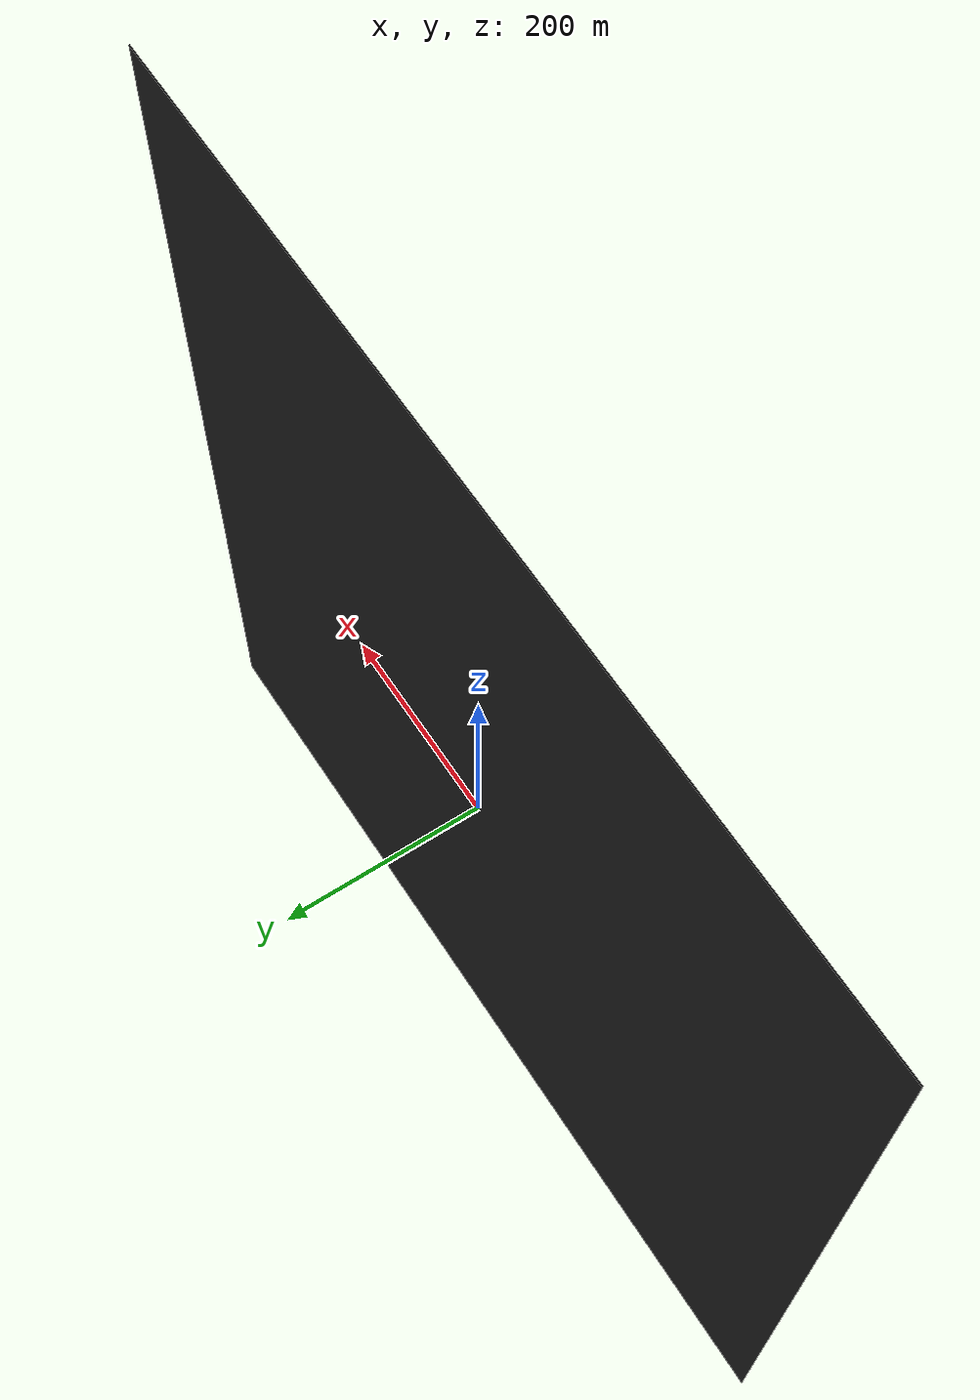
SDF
<?xml version="1.0" ?>
<sdf version="1.5">
  <world name="default">

		<!-- Camera pose -->
    <gui>
			<camera name="gzclient_camera">
				<pose>3.402 -47.01 16.001 0 0 1.57</pose>
			</camera>
    </gui>

    <!-- A global light source -->
    <include>
      <uri>model://sun</uri>
	    <pose>0 0 0 0 0 0</pose>
    </include>

    <!-- A transparent ground plane -->
    <include>
      <uri>model://breakout_base</uri>
      <pose>0 0 1 0 0 0</pose>
    </include>

    <physics type="ode">
        <friction>
            <ode>
                <mu>0.0</mu>
            </ode>
        </friction>

        <gravity>0 0 0</gravity>
        <air_resistance>0</air_resistance>

        <max_step_size>0.001</max_step_size>
    </physics>

		<!-- A bouncy ball -->
		<include>
			<uri>model://bouncy_ball</uri>
			<pose>0 0 17 0 0 0</pose>
		</include>

		<!-- A boundary -->
		<include>
			<uri>model://boundary</uri>
			<pose>0 0 30 0 0 0</pose>
		</include>

		<!-- A paddle -->
		<include>
			<uri>model://paddle</uri>
			<pose>0 0 3 0 0 0</pose>
		</include>

		<!-- Breakout Background -->
		<include>
			<uri>model://breakout_bg</uri>
			<pose>0 0 0 1.5707 0 0</pose>
		</include>

		<!-- Yellow Row 1 -->
		<include>
			<name>yellow_brick_1</name>
			<uri>model://yellow_brick</uri>
			<pose>-10.0715 0 20 0 0 0</pose>
		</include>

		<include>
			<name>yellow_brick_2</name>
			<uri>model://yellow_brick</uri>
			<pose>-8.522 0 20 0 0 0</pose>
		</include>

		<include>
			<name>yellow_brick_3</name>
			<uri>model://yellow_brick</uri>
			<pose>-6.9725 0 20 0 0 0</pose>
		</include>

		<include>
			<name>yellow_brick_4</name>
			<uri>model://yellow_brick</uri>
			<pose>-5.423 0 20 0 0 0</pose>
		</include>

		<include>
			<name>yellow_brick_5</name>
			<uri>model://yellow_brick</uri>
			<pose>-3.8735 0 20 0 0 0</pose>
		</include>

		<include>
			<name>yellow_brick_6</name>
			<uri>model://yellow_brick</uri>
			<pose>-2.324 0 20 0 0 0</pose>
		</include>

		<include>
			<name>yellow_brick_7</name>
			<uri>model://yellow_brick</uri>
			<pose>-0.7745 0 20 0 0 0</pose>
		</include>

		<include>
			<name>yellow_brick_8</name>
			<uri>model://yellow_brick</uri>
			<pose>0.7745 0 20 0 0 0</pose>
		</include>

		<include>
			<name>yellow_brick_9</name>
			<uri>model://yellow_brick</uri>
			<pose>2.324 0 20 0 0 0</pose>
		</include>

		<include>
			<name>yellow_brick_10</name>
			<uri>model://yellow_brick</uri>
			<pose>3.8735 0 20 0 0 0</pose>
		</include>

		<include>
			<name>yellow_brick_11</name>
			<uri>model://yellow_brick</uri>
			<pose>5.423 0 20 0 0 0</pose>
		</include>

		<include>
			<name>yellow_brick_12</name>
			<uri>model://yellow_brick</uri>
			<pose>6.9725 0 20 0 0 0</pose>
		</include>

		<include>
			<name>yellow_brick_13</name>
			<uri>model://yellow_brick</uri>
			<pose>8.522 0 20 0 0 0</pose>
		</include>

		<include>
			<name>yellow_brick_14</name>
			<uri>model://yellow_brick</uri>
			<pose>10.0715 0 20 0 0 0</pose>
		</include>

		<!-- Yellow Row 2 -->
		<include>
			<name>yellow_brick_15</name>
			<uri>model://yellow_brick</uri>
			<pose>-10.0715 0 20.55 0 0 0</pose>
		</include>

		<include>
			<name>yellow_brick_16</name>
			<uri>model://yellow_brick</uri>
			<pose>-8.522 0 20.55 0 0 0</pose>
		</include>

		<include>
			<name>yellow_brick_17</name>
			<uri>model://yellow_brick</uri>
			<pose>-6.9725 0 20.55 0 0 0</pose>
		</include>

		<include>
			<name>yellow_brick_18</name>
			<uri>model://yellow_brick</uri>
			<pose>-5.423 0 20.55 0 0 0</pose>
		</include>

		<include>
			<name>yellow_brick_19</name>
			<uri>model://yellow_brick</uri>
			<pose>-3.8735 0 20.55 0 0 0</pose>
		</include>

		<include>
			<name>yellow_brick_20</name>
			<uri>model://yellow_brick</uri>
			<pose>-2.324 0 20.55 0 0 0</pose>
		</include>

		<include>
			<name>yellow_brick_21</name>
			<uri>model://yellow_brick</uri>
			<pose>-0.7745 0 20.55 0 0 0</pose>
		</include>

		<include>
			<name>yellow_brick_22</name>
			<uri>model://yellow_brick</uri>
			<pose>0.7745 0 20.55 0 0 0</pose>
		</include>

		<include>
			<name>yellow_brick_23</name>
			<uri>model://yellow_brick</uri>
			<pose>2.324 0 20.55 0 0 0</pose>
		</include>

		<include>
			<name>yellow_brick_24</name>
			<uri>model://yellow_brick</uri>
			<pose>3.8735 0 20.55 0 0 0</pose>
		</include>

		<include>
			<name>yellow_brick_25</name>
			<uri>model://yellow_brick</uri>
			<pose>5.423 0 20.55 0 0 0</pose>
		</include>

		<include>
			<name>yellow_brick_26</name>
			<uri>model://yellow_brick</uri>
			<pose>6.9725 0 20.55 0 0 0</pose>
		</include>

		<include>
			<name>yellow_brick_27</name>
			<uri>model://yellow_brick</uri>
			<pose>8.522 0 20.55 0 0 0</pose>
		</include>

		<include>
			<name>yellow_brick_28</name>
			<uri>model://yellow_brick</uri>
			<pose>10.0715 0 20.55 0 0 0</pose>
		</include>

		<!-- Green Row 1 -->
		<include>
			<name>green_brick_1</name>
			<uri>model://green_brick</uri>
			<pose>-10.0715 0 21.1 0 0 0</pose>
		</include>

		<include>
			<name>green_brick_2</name>
			<uri>model://green_brick</uri>
			<pose>-8.522 0 21.1 0 0 0</pose>
		</include>

		<include>
			<name>green_brick_3</name>
			<uri>model://green_brick</uri>
			<pose>-6.9725 0 21.1 0 0 0</pose>
		</include>

		<include>
			<name>green_brick_4</name>
			<uri>model://green_brick</uri>
			<pose>-5.423 0 21.1 0 0 0</pose>
		</include>

		<include>
			<name>green_brick_5</name>
			<uri>model://green_brick</uri>
			<pose>-3.8735 0 21.1 0 0 0</pose>
		</include>

		<include>
			<name>green_brick_6</name>
			<uri>model://green_brick</uri>
			<pose>-2.324 0 21.1 0 0 0</pose>
		</include>

		<include>
			<name>green_brick_7</name>
			<uri>model://green_brick</uri>
			<pose>-0.7745 0 21.1 0 0 0</pose>
		</include>

		<include>
			<name>green_brick_8</name>
			<uri>model://green_brick</uri>
			<pose>0.7745 0 21.1 0 0 0</pose>
		</include>

		<include>
			<name>green_brick_9</name>
			<uri>model://green_brick</uri>
			<pose>2.324 0 21.1 0 0 0</pose>
		</include>

		<include>
			<name>green_brick_10</name>
			<uri>model://green_brick</uri>
			<pose>3.8735 0 21.1 0 0 0</pose>
		</include>

		<include>
			<name>green_brick_11</name>
			<uri>model://green_brick</uri>
			<pose>5.423 0 21.1 0 0 0</pose>
		</include>

		<include>
			<name>green_brick_12</name>
			<uri>model://green_brick</uri>
			<pose>6.9725 0 21.1 0 0 0</pose>
		</include>

		<include>
			<name>green_brick_13</name>
			<uri>model://green_brick</uri>
			<pose>8.522 0 21.1 0 0 0</pose>
		</include>

		<include>
			<name>green_brick_14</name>
			<uri>model://green_brick</uri>
			<pose>10.0715 0 21.1 0 0 0</pose>
		</include>

		<!-- Green Row 2 -->
		<include>
			<name>green_brick_15</name>
			<uri>model://green_brick</uri>
			<pose>-10.0715 0 21.65 0 0 0</pose>
		</include>

		<include>
			<name>green_brick_16</name>
			<uri>model://green_brick</uri>
			<pose>-8.522 0 21.65 0 0 0</pose>
		</include>

		<include>
			<name>green_brick_17</name>
			<uri>model://green_brick</uri>
			<pose>-6.9725 0 21.65 0 0 0</pose>
		</include>

		<include>
			<name>green_brick_18</name>
			<uri>model://green_brick</uri>
			<pose>-5.423 0 21.65 0 0 0</pose>
		</include>

		<include>
			<name>green_brick_19</name>
			<uri>model://green_brick</uri>
			<pose>-3.8735 0 21.65 0 0 0</pose>
		</include>

		<include>
			<name>green_brick_20</name>
			<uri>model://green_brick</uri>
			<pose>-2.324 0 21.65 0 0 0</pose>
		</include>

		<include>
			<name>green_brick_21</name>
			<uri>model://green_brick</uri>
			<pose>-0.7745 0 21.65 0 0 0</pose>
		</include>

		<include>
			<name>green_brick_22</name>
			<uri>model://green_brick</uri>
			<pose>0.7745 0 21.65 0 0 0</pose>
		</include>

		<include>
			<name>green_brick_23</name>
			<uri>model://green_brick</uri>
			<pose>2.324 0 21.65 0 0 0</pose>
		</include>

		<include>
			<name>green_brick_24</name>
			<uri>model://green_brick</uri>
			<pose>3.8735 0 21.65 0 0 0</pose>
		</include>

		<include>
			<name>green_brick_25</name>
			<uri>model://green_brick</uri>
			<pose>5.423 0 21.65 0 0 0</pose>
		</include>

		<include>
			<name>green_brick_26</name>
			<uri>model://green_brick</uri>
			<pose>6.9725 0 21.65 0 0 0</pose>
		</include>

		<include>
			<name>green_brick_27</name>
			<uri>model://green_brick</uri>
			<pose>8.522 0 21.65 0 0 0</pose>
		</include>

		<include>
			<name>green_brick_28</name>
			<uri>model://green_brick</uri>
			<pose>10.0715 0 21.65 0 0 0</pose>
		</include>

		<!-- Orange Row 1 -->
		<include>
			<name>orange_brick_1</name>
			<uri>model://orange_brick</uri>
			<pose>-10.0715 0 22.2 0 0 0</pose>
		</include>

		<include>
			<name>orange_brick_2</name>
			<uri>model://orange_brick</uri>
			<pose>-8.522 0 22.2 0 0 0</pose>
		</include>

		<include>
			<name>orange_brick_3</name>
			<uri>model://orange_brick</uri>
			<pose>-6.9725 0 22.2 0 0 0</pose>
		</include>

		<include>
			<name>orange_brick_4</name>
			<uri>model://orange_brick</uri>
			<pose>-5.423 0 22.2 0 0 0</pose>
		</include>

		<include>
			<name>orange_brick_5</name>
			<uri>model://orange_brick</uri>
			<pose>-3.8735 0 22.2 0 0 0</pose>
		</include>

		<include>
			<name>orange_brick_6</name>
			<uri>model://orange_brick</uri>
			<pose>-2.324 0 22.2 0 0 0</pose>
		</include>

		<include>
			<name>orange_brick_7</name>
			<uri>model://orange_brick</uri>
			<pose>-0.7745 0 22.2 0 0 0</pose>
		</include>

		<include>
			<name>orange_brick_8</name>
			<uri>model://orange_brick</uri>
			<pose>0.7745 0 22.2 0 0 0</pose>
		</include>

		<include>
			<name>orange_brick_9</name>
			<uri>model://orange_brick</uri>
			<pose>2.324 0 22.2 0 0 0</pose>
		</include>

		<include>
			<name>orange_brick_10</name>
			<uri>model://orange_brick</uri>
			<pose>3.8735 0 22.2 0 0 0</pose>
		</include>

		<include>
			<name>orange_brick_11</name>
			<uri>model://orange_brick</uri>
			<pose>5.423 0 22.2 0 0 0</pose>
		</include>

		<include>
			<name>orange_brick_12</name>
			<uri>model://orange_brick</uri>
			<pose>6.9725 0 22.2 0 0 0</pose>
		</include>

		<include>
			<name>orange_brick_13</name>
			<uri>model://orange_brick</uri>
			<pose>8.522 0 22.2 0 0 0</pose>
		</include>

		<include>
			<name>orange_brick_14</name>
			<uri>model://orange_brick</uri>
			<pose>10.0715 0 22.2 0 0 0</pose>
		</include>

		<!-- Orange Row 2 -->
		<include>
			<name>orange_brick_15</name>
			<uri>model://orange_brick</uri>
			<pose>-10.0715 0 22.75 0 0 0</pose>
		</include>

		<include>
			<name>orange_brick_16</name>
			<uri>model://orange_brick</uri>
			<pose>-8.522 0 22.75 0 0 0</pose>
		</include>

		<include>
			<name>orange_brick_17</name>
			<uri>model://orange_brick</uri>
			<pose>-6.9725 0 22.75 0 0 0</pose>
		</include>

		<include>
			<name>orange_brick_18</name>
			<uri>model://orange_brick</uri>
			<pose>-5.423 0 22.75 0 0 0</pose>
		</include>

		<include>
			<name>orange_brick_19</name>
			<uri>model://orange_brick</uri>
			<pose>-3.8735 0 22.75 0 0 0</pose>
		</include>

		<include>
			<name>orange_brick_20</name>
			<uri>model://orange_brick</uri>
			<pose>-2.324 0 22.75 0 0 0</pose>
		</include>

		<include>
			<name>orange_brick_21</name>
			<uri>model://orange_brick</uri>
			<pose>-0.7745 0 22.75 0 0 0</pose>
		</include>

		<include>
			<name>orange_brick_22</name>
			<uri>model://orange_brick</uri>
			<pose>0.7745 0 22.75 0 0 0</pose>
		</include>

		<include>
			<name>orange_brick_23</name>
			<uri>model://orange_brick</uri>
			<pose>2.324 0 22.75 0 0 0</pose>
		</include>

		<include>
			<name>orange_brick_24</name>
			<uri>model://orange_brick</uri>
			<pose>3.8735 0 22.75 0 0 0</pose>
		</include>

		<include>
			<name>orange_brick_25</name>
			<uri>model://orange_brick</uri>
			<pose>5.423 0 22.75 0 0 0</pose>
		</include>

		<include>
			<name>orange_brick_26</name>
			<uri>model://orange_brick</uri>
			<pose>6.9725 0 22.75 0 0 0</pose>
		</include>

		<include>
			<name>orange_brick_27</name>
			<uri>model://orange_brick</uri>
			<pose>8.522 0 22.75 0 0 0</pose>
		</include>

		<include>
			<name>orange_brick_28</name>
			<uri>model://orange_brick</uri>
			<pose>10.0715 0 22.75 0 0 0</pose>
		</include>

		<!-- Red Row 1 -->
		<include>
			<name>red_brick_1</name>
			<uri>model://red_brick</uri>
			<pose>-10.0715 0 23.3 0 0 0</pose>
		</include>

		<include>
			<name>red_brick_2</name>
			<uri>model://red_brick</uri>
			<pose>-8.522 0 23.3 0 0 0</pose>
		</include>

		<include>
			<name>red_brick_3</name>
			<uri>model://red_brick</uri>
			<pose>-6.9725 0 23.3 0 0 0</pose>
		</include>

		<include>
			<name>red_brick_4</name>
			<uri>model://red_brick</uri>
			<pose>-5.423 0 23.3 0 0 0</pose>
		</include>

		<include>
			<name>red_brick_5</name>
			<uri>model://red_brick</uri>
			<pose>-3.8735 0 23.3 0 0 0</pose>
		</include>

		<include>
			<name>red_brick_6</name>
			<uri>model://red_brick</uri>
			<pose>-2.324 0 23.3 0 0 0</pose>
		</include>

		<include>
			<name>red_brick_7</name>
			<uri>model://red_brick</uri>
			<pose>-0.7745 0 23.3 0 0 0</pose>
		</include>

		<include>
			<name>red_brick_8</name>
			<uri>model://red_brick</uri>
			<pose>0.7745 0 23.3 0 0 0</pose>
		</include>

		<include>
			<name>red_brick_9</name>
			<uri>model://red_brick</uri>
			<pose>2.324 0 23.3 0 0 0</pose>
		</include>

		<include>
			<name>red_brick_10</name>
			<uri>model://red_brick</uri>
			<pose>3.8735 0 23.3 0 0 0</pose>
		</include>

		<include>
			<name>red_brick_11</name>
			<uri>model://red_brick</uri>
			<pose>5.423 0 23.3 0 0 0</pose>
		</include>

		<include>
			<name>red_brick_12</name>
			<uri>model://red_brick</uri>
			<pose>6.9725 0 23.3 0 0 0</pose>
		</include>

		<include>
			<name>red_brick_13</name>
			<uri>model://red_brick</uri>
			<pose>8.522 0 23.3 0 0 0</pose>
		</include>

		<include>
			<name>red_brick_14</name>
			<uri>model://red_brick</uri>
			<pose>10.0715 0 23.3 0 0 0</pose>
		</include>

		<!-- Red Row 2 -->
		<include>
			<name>red_brick_15</name>
			<uri>model://red_brick</uri>
			<pose>-10.0715 0 23.85 0 0 0</pose>
		</include>

		<include>
			<name>red_brick_16</name>
			<uri>model://red_brick</uri>
			<pose>-8.522 0 23.85 0 0 0</pose>
		</include>

		<include>
			<name>red_brick_17</name>
			<uri>model://red_brick</uri>
			<pose>-6.9725 0 23.85 0 0 0</pose>
		</include>

		<include>
			<name>red_brick_18</name>
			<uri>model://red_brick</uri>
			<pose>-5.423 0 23.85 0 0 0</pose>
		</include>

		<include>
			<name>red_brick_19</name>
			<uri>model://red_brick</uri>
			<pose>-3.8735 0 23.85 0 0 0</pose>
		</include>

		<include>
			<name>red_brick_20</name>
			<uri>model://red_brick</uri>
			<pose>-2.324 0 23.85 0 0 0</pose>
		</include>

		<include>
			<name>red_brick_21</name>
			<uri>model://red_brick</uri>
			<pose>-0.7745 0 23.85 0 0 0</pose>
		</include>

		<include>
			<name>red_brick_22</name>
			<uri>model://red_brick</uri>
			<pose>0.7745 0 23.85 0 0 0</pose>
		</include>

		<include>
			<name>red_brick_23</name>
			<uri>model://red_brick</uri>
			<pose>2.324 0 23.85 0 0 0</pose>
		</include>

		<include>
			<name>red_brick_24</name>
			<uri>model://red_brick</uri>
			<pose>3.8735 0 23.85 0 0 0</pose>
		</include>

		<include>
			<name>red_brick_25</name>
			<uri>model://red_brick</uri>
			<pose>5.423 0 23.85 0 0 0</pose>
		</include>

		<include>
			<name>red_brick_26</name>
			<uri>model://red_brick</uri>
			<pose>6.9725 0 23.85 0 0 0</pose>
		</include>

		<include>
			<name>red_brick_27</name>
			<uri>model://red_brick</uri>
			<pose>8.522 0 23.85 0 0 0</pose>
		</include>

		<include>
			<name>red_brick_28</name>
			<uri>model://red_brick</uri>
			<pose>10.0715 0 23.85 0 0 0</pose>
		</include>

		<!-- Live Score Counter -->
		<include>
			<name>zero0</name>
			<uri>model://zero</uri>
			<pose>-8.522 0 26.4 0 0 0</pose>
		</include>

		<include>
			<name>zero1</name>
			<uri>model://zero</uri>
			<pose>-6.9725 0 26.4 0 0 0</pose>
		</include>

		<include>
			<name>zero2</name>
			<uri>model://zero</uri>
			<pose>-5.423 0 26.4 0 0 0</pose>
		</include>

		<!-- High Score Counter -->
		<include>
			<name>zero3</name>
			<uri>model://zero</uri>
			<pose>3.8735 0 26.4 0 0 0</pose>
		</include>

		<include>
			<name>zero4</name>
			<uri>model://zero</uri>
			<pose>5.423 0 26.4 0 0 0</pose>
		</include>

		<include>
			<name>zero5</name>
			<uri>model://zero</uri>
			<pose>6.9725 0 26.4 0 0 0</pose>
		</include>

		<!-- Top left decoration -->
		<include>
			<name>one6</name>
			<uri>model://one</uri>
			<pose>-10.0715 0 29.5 0 0 0</pose>
		</include>

		<!-- Lives Counter -->
		<include>
			<name>one7</name>
			<uri>model://one</uri>
			<pose>2.324 0 29.5 0 0 0</pose>
		</include>

		<!-- keep barebones scene -->
    <scene>
      <shadows>0</shadows>
			<grid>false</grid>
			<origin_visual>false</origin_visual>
    </scene>

		<plugin name="breakoutGazeboPlugin" filename="libbreakoutGazeboPlugin.so"/>

  </world>
</sdf>

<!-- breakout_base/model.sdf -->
<sdf version="1.5">
  <model name="breakout_base">
    <static>true</static>
    <link name="link">
      <collision name="collision">
        <geometry>
          <plane>
            <normal>0 0 1</normal>
            <size>100 100</size>
          </plane>
        </geometry>
        <surface>
          <friction>
            <ode>
              <mu>100</mu>
              <mu2>50</mu2>
            </ode>
          </friction>
        </surface>
      </collision>
    </link>
  </model>
</sdf>

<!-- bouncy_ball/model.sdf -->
<sdf version="1.5">
    <model name="bouncy_ball">
      <link name="ball_link">

        <collision name="collision">
          <geometry>
            <sphere>
              <radius>0.1</radius>
            </sphere>
          </geometry>

          <surface>

            <bounce>
              <restitution_coefficient>1.0</restitution_coefficient>
              <threshold>0</threshold>
            </bounce>

						<friction>
							<ode>
								<mu>0.0</mu>
								<mu2>0.0</mu2>
							</ode>
						</friction>

            <contact>
              <ode>
                <max_vel>50</max_vel>
              </ode>
            </contact>

          </surface>

        </collision>

        <visual name="visual">
          <geometry>
            <sphere>
              <radius>0.1</radius>
            </sphere>
          </geometry>
					<material>
						<ambient>1.0 0.4 1.0 1</ambient>
						<diffuse>1.0 0.4 1.0 1</diffuse>
						<specular>0.1 0.1 0.1 1</specular>
					</material>
        </visual>

				<sensor name="collision_sensor" type="contact">
					<update_rate>10.0</update_rate>
					<always_on>true</always_on>
					<contact>
						<collision>collision</collision>
						<topic>bumper_contact</topic>
					</contact>
					<plugin name="collision_plugin" filename="libgazebo_ros_bumper.so">
						<update_rate>10.0</update_rate>
						<always_on>true</always_on>
						<bumperTopicName>/robot_bumper</bumperTopicName>
						<frameName>ball_link</frameName>
					</plugin>
				</sensor>
      </link>

    </model>
</sdf>

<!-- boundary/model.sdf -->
<sdf version="1.5">
    <model name="boundary">
			<static>true</static>
      <link name="bottom_link">

        <collision name="collision">
          <geometry>
            <box>
							<size>22.5 0.5 0.5</size>
						</box>
          </geometry>

          <surface>

            <bounce>
              <restitution_coefficient>1.0</restitution_coefficient>
              <threshold>0</threshold>
            </bounce>

						<friction>
							<ode>
								<mu>0.0</mu>
								<mu2>0.0</mu2>
							</ode>
						</friction>

            <contact>
              <ode>
                <max_vel>999</max_vel>
              </ode>
            </contact>

          </surface>

        </collision>

        <visual name="visual">
          <geometry>
            <box>
							<size>22.5 0.5 0.5</size>
						</box>
          </geometry>

					<material>
						<ambient>1.0 1.0 1.0 1</ambient>
						<diffuse>1.0 1.0 1.0 1</diffuse>
						<specular>1.0 1.0 1.0 1</specular>
					</material>
        </visual>

      </link>

			<link name="left_link">
				<pose>-11 0 -20 0 1.5707 0</pose>

				<collision name="collision">
					<geometry>
						<box>
							<size>40.0 0.5 0.5</size>
						</box>
					</geometry>

					<surface>

						<bounce>
							<restitution_coefficient>1.0</restitution_coefficient>
							<threshold>0</threshold>
						</bounce>

						<friction>
							<ode>
								<mu>0.0</mu>
								<mu2>0.0</mu2>
							</ode>
						</friction>

						<contact>
							<ode>
								<max_vel>999</max_vel>
							</ode>
						</contact>

					</surface>

				</collision>

				<visual name="visual">
					<geometry>
						<box>
							<size>40.0 0.5 0.5</size>
						</box>
					</geometry>

					<material>
						<ambient>1.0 1.0 1.0 1</ambient>
						<diffuse>1.0 1.0 1.0 1</diffuse>
						<specular>1.0 1.0 1.0 1</specular>
					</material>

				</visual>
			</link>

			<link name="right_link">
				<pose>11 0 -20 0 1.5707 0</pose>

				<collision name="collision">
					<geometry>
						<box>
							<size>40.0 0.5 0.5</size>
						</box>
					</geometry>

					<surface>

						<bounce>
							<restitution_coefficient>1.0</restitution_coefficient>
							<threshold>0</threshold>
						</bounce>

						<friction>
							<ode>
								<mu>0.0</mu>
								<mu2>0.0</mu2>
							</ode>
						</friction>

						<contact>
							<ode>
								<max_vel>999</max_vel>
							</ode>
						</contact>

					</surface>

				</collision>

				<visual name="visual">
					<geometry>
						<box>
							<size>40.0 0.5 0.5</size>
						</box>
					</geometry>

					<material>
						<ambient>1.0 1.0 1.0 1</ambient>
						<diffuse>1.0 1.0 1.0 1</diffuse>
						<specular>1.0 1.0 1.0 1</specular>
					</material>

				</visual>
			</link>

    </model>
</sdf>

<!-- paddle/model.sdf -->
<sdf version="1.7">
    <model name="paddle">
			<static>false</static>
      <link name="base_link">

				<inertial>
					<pose>0 0 0 0 0 0</pose>
					<mass>1000000</mass>
					<inertia>
						<ixx>1000000</ixx>
						<ixy>0</ixy>
						<ixz>0</ixz>
						<iyy>1000000</iyy>
						<iyz>0</iyz>
						<izz>1000000</izz>
					</inertia>
				</inertial>

				<collision name="collision">
					<geometry>
						<box>
							<size>1.5 0.2 0.2</size>
						</box>
					</geometry>

					<surface>

						<bounce>
							<restitution_coefficient>1.0</restitution_coefficient>
							<threshold>0</threshold>
						</bounce>

						<friction>
							<ode>
								<mu>0.0</mu>
								<mu2>0.0</mu2>
							</ode>
						</friction>

						<contact>
							<ode>
								<max_vel>999</max_vel>
							</ode>
						</contact>

					</surface>

				</collision>

				<visual name="visual">
					<geometry>
						<box>
							<size>1.5 0.2 0.2</size>
						</box>
					</geometry>
					<material>
						<script>
							<uri>file://media/materials/scripts/gazebo.material</uri>
							<name>Gazebo/Turquoise</name>
						</script>
					</material>
				</visual>

      </link>

			<plugin name="object_controller" filename="libgazebo_ros_planar_move.so">
				<robotNamespace>paddle</robotNamespace>
				<commandTopic>cmd_vel</commandTopic>
				<odometryTopic>odom</odometryTopic>
				<odometryFrame>odom</odometryFrame>
				<odometryRate>50.0</odometryRate>
				<robotBaseFrame>base_link</robotBaseFrame>
				<cmdTimeout>-1.0</cmdTimeout>
			</plugin>

    </model>
</sdf>

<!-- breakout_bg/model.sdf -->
<sdf version="1.5">
  <model name="breakout_bg">
    <static>true</static>
    <link name="link">
      <collision name="collision">
        <geometry>
          <plane>
            <normal>0 0 1</normal>
            <size>1000 1000</size>
          </plane>
        </geometry>
        <surface>
          <friction>
            <ode>
              <mu>100</mu>
              <mu2>50</mu2>
            </ode>
          </friction>
        </surface>
      </collision>
      <visual name="visual">
        <cast_shadows>false</cast_shadows>
        <geometry>
          <plane>
            <normal>0 0 1</normal>
            <size>1000 1000</size>
          </plane>
        </geometry>
        <material>
          <script>
            <uri>file://media/materials/scripts/gazebo.material</uri>
            <name>Gazebo/Black</name>
          </script>
        </material>
      </visual>
    </link>
  </model>
</sdf>

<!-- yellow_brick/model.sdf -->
<sdf version="1.7">
    <model name="yellow_brick">
			<static>true</static>
      <link name="base_link">

				<collision name="collision">
					<geometry>
						<box>
							<size>1.357 0.2 0.2</size>
						</box>
					</geometry>

					<surface>

						<bounce>
							<restitution_coefficient>1.0</restitution_coefficient>
							<threshold>0</threshold>
						</bounce>

						<friction>
							<ode>
								<mu>0.0</mu>
								<mu2>0.0</mu2>
							</ode>
						</friction>

						<contact>
							<ode>
								<max_vel>999</max_vel>
							</ode>
						</contact>

					</surface>

				</collision>

				<visual name="visual">
					<geometry>
						<box>
							<size>1.357 0.5 0.4</size>
						</box>
					</geometry>
					<material>
						<script>
							<uri>file://media/materials/scripts/gazebo.material</uri>
							<name>Gazebo/Yellow</name>
						</script>
					</material>
				</visual>
      </link>

    </model>
</sdf>

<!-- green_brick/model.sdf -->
<sdf version="1.7">
    <model name="green_brick">
			<static>true</static>
      <link name="base_link">

				<collision name="collision">
					<geometry>
						<box>
							<size>1.357 0.2 0.2</size>
						</box>
					</geometry>

					<surface>

						<bounce>
							<restitution_coefficient>1.0</restitution_coefficient>
							<threshold>0</threshold>
						</bounce>

						<friction>
							<ode>
								<mu>0.0</mu>
								<mu2>0.0</mu2>
							</ode>
						</friction>

						<contact>
							<ode>
								<max_vel>999</max_vel>
							</ode>
						</contact>

					</surface>

				</collision>

				<visual name="visual">
					<geometry>
						<box>
							<size>1.357 0.5 0.4</size>
						</box>
					</geometry>
					<material>
						<script>
							<uri>file://media/materials/scripts/gazebo.material</uri>
							<name>Gazebo/Green</name>
						</script>
					</material>
				</visual>
      </link>

    </model>
</sdf>

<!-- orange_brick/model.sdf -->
<sdf version="1.7">
    <model name="orange_brick">
			<static>true</static>
      <link name="base_link">

				<collision name="collision">
					<geometry>
						<box>
							<size>1.357 0.2 0.2</size>
						</box>
					</geometry>

					<surface>

						<bounce>
							<restitution_coefficient>1.0</restitution_coefficient>
							<threshold>0</threshold>
						</bounce>

						<friction>
							<ode>
								<mu>0.0</mu>
								<mu2>0.0</mu2>
							</ode>
						</friction>

						<contact>
							<ode>
								<max_vel>999</max_vel>
							</ode>
						</contact>

					</surface>

				</collision>

				<visual name="visual">
					<geometry>
						<box>
							<size>1.357 0.5 0.4</size>
						</box>
					</geometry>
					<material>
						<script>
							<uri>file://media/materials/scripts/gazebo.material</uri>
							<name>Gazebo/Orange</name>
						</script>
					</material>
				</visual>
      </link>

    </model>
</sdf>

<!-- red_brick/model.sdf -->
<sdf version="1.7">
    <model name="red_brick">
			<static>true</static>
      <link name="base_link">

				<collision name="collision">
					<geometry>
						<box>
							<size>1.357 0.2 0.2</size>
						</box>
					</geometry>

					<surface>

						<bounce>
							<restitution_coefficient>1.0</restitution_coefficient>
							<threshold>0</threshold>
						</bounce>

						<friction>
							<ode>
								<mu>0.0</mu>
								<mu2>0.0</mu2>
							</ode>
						</friction>

						<contact>
							<ode>
								<max_vel>999</max_vel>
							</ode>
						</contact>

					</surface>

				</collision>

				<visual name="visual">
					<geometry>
						<box>
							<size>1.357 0.5 0.4</size>
						</box>
					</geometry>
					<material>
						<script>
							<uri>file://media/materials/scripts/gazebo.material</uri>
							<name>Gazebo/Red</name>
						</script>
					</material>
				</visual>
      </link>

    </model>
</sdf>

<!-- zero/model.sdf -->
<sdf version="1.7">
    <model name="zero">
			<static>true</static>

			<!-- creating a 7 segment display -->

      <link name="a">
				<visual name="visual">
					<geometry>
						<box>
							<size>1.357 0.5 0.4</size>
						</box>
					</geometry>
					<material>
						<script>
							<uri>file://media/materials/scripts/gazebo.material</uri>
							<name>Gazebo/White</name>
						</script>
					</material>
				</visual>
      </link>

			<link name="b">
				<pose>0.4785 0 -0.4785 0 1.5707 0</pose>
				<visual name="visual">
					<geometry>
						<box>
							<size>1.357 0.5 0.4</size>
						</box>
					</geometry>
					<material>
						<script>
							<uri>file://media/materials/scripts/gazebo.material</uri>
							<name>Gazebo/White</name>
						</script>
					</material>
				</visual>
			</link>

			<link name="c">
				<pose>0.4785 0 -1.4355 0 1.5707 0</pose>
				<visual name="visual">
					<geometry>
						<box>
							<size>1.357 0.5 0.4</size>
						</box>
					</geometry>
					<material>
						<script>
							<uri>file://media/materials/scripts/gazebo.material</uri>
							<name>Gazebo/White</name>
						</script>
					</material>
				</visual>
			</link>

			<link name="d">
				<pose>0 0 -1.914 0 0 0</pose>
				<visual name="visual">
					<geometry>
						<box>
							<size>1.357 0.5 0.4</size>
						</box>
					</geometry>
					<material>
						<script>
							<uri>file://media/materials/scripts/gazebo.material</uri>
							<name>Gazebo/White</name>
						</script>
					</material>
				</visual>
			</link>

			<link name="e">
				<pose>-0.4785 0 -1.4355 0 -1.5707 0</pose>
				<visual name="visual">
					<geometry>
						<box>
							<size>1.357 0.5 0.4</size>
						</box>
					</geometry>
					<material>
						<script>
							<uri>file://media/materials/scripts/gazebo.material</uri>
							<name>Gazebo/White</name>
						</script>
					</material>
				</visual>
			</link>

			<link name="f">
				<pose>-0.4785 0 -0.4785 0 -1.5707 0</pose>
				<visual name="visual">
					<geometry>
						<box>
							<size>1.357 0.5 0.4</size>
						</box>
					</geometry>
					<material>
						<script>
							<uri>file://media/materials/scripts/gazebo.material</uri>
							<name>Gazebo/White</name>
						</script>
					</material>
				</visual>
			</link>

    </model>
</sdf>

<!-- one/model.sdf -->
<sdf version="1.7">
    <model name="one">
			<static>true</static>

			<!-- creating a 7 segment display -->

			<link name="b">
				<pose>0.4785 0 -0.4785 0 1.5707 0</pose>
				<visual name="visual">
					<geometry>
						<box>
							<size>1.357 0.5 0.4</size>
						</box>
					</geometry>
					<material>
						<script>
							<uri>file://media/materials/scripts/gazebo.material</uri>
							<name>Gazebo/White</name>
						</script>
					</material>
				</visual>
			</link>

			<link name="c">
				<pose>0.4785 0 -1.4355 0 1.5707 0</pose>
				<visual name="visual">
					<geometry>
						<box>
							<size>1.357 0.5 0.4</size>
						</box>
					</geometry>
					<material>
						<script>
							<uri>file://media/materials/scripts/gazebo.material</uri>
							<name>Gazebo/White</name>
						</script>
					</material>
				</visual>
			</link>

    </model>
</sdf>
